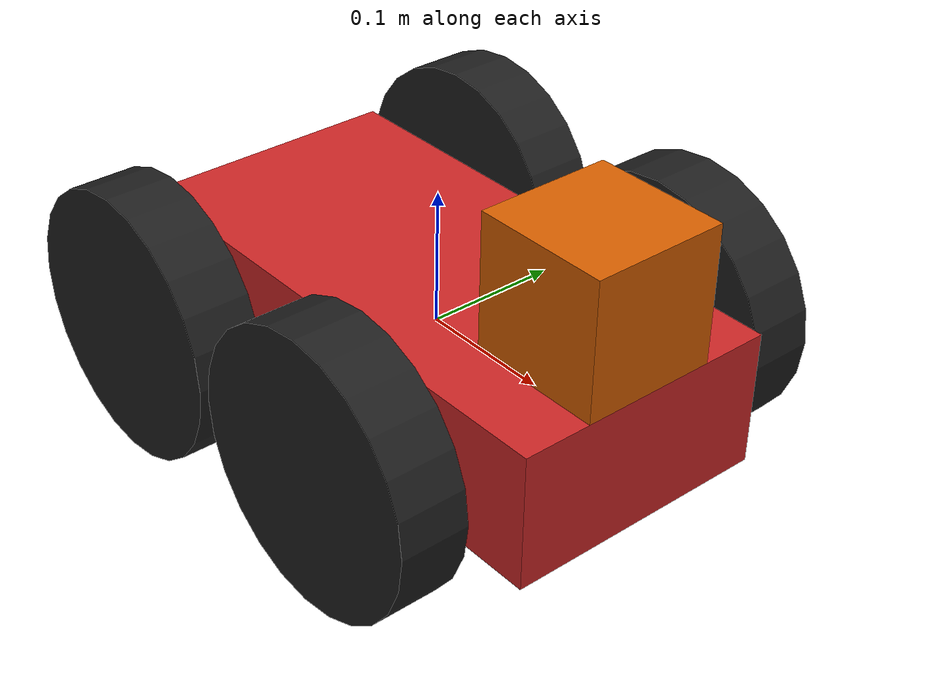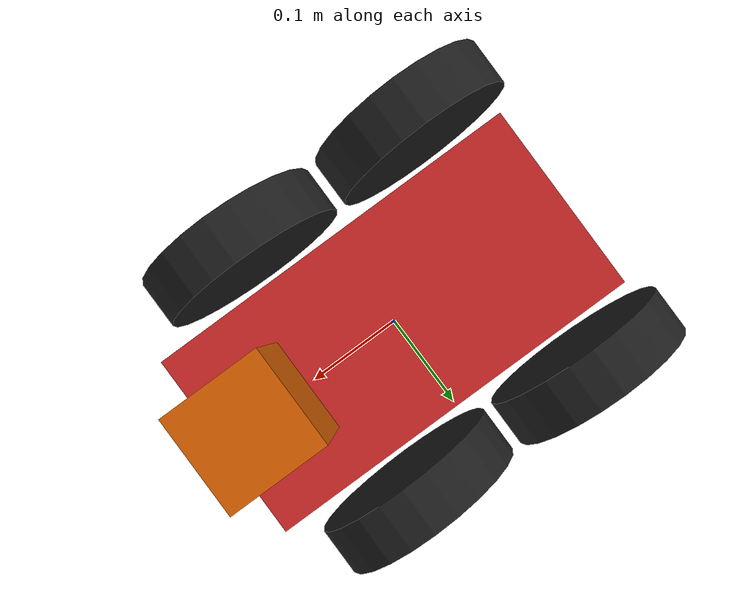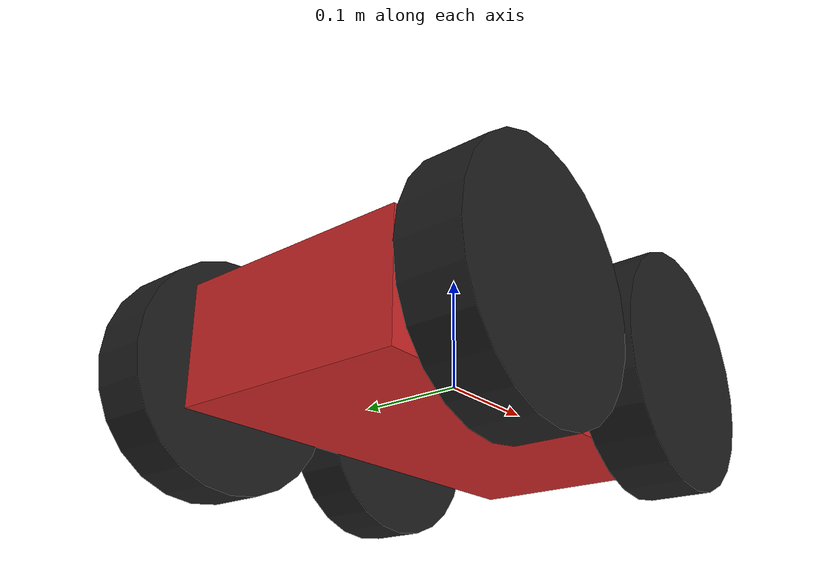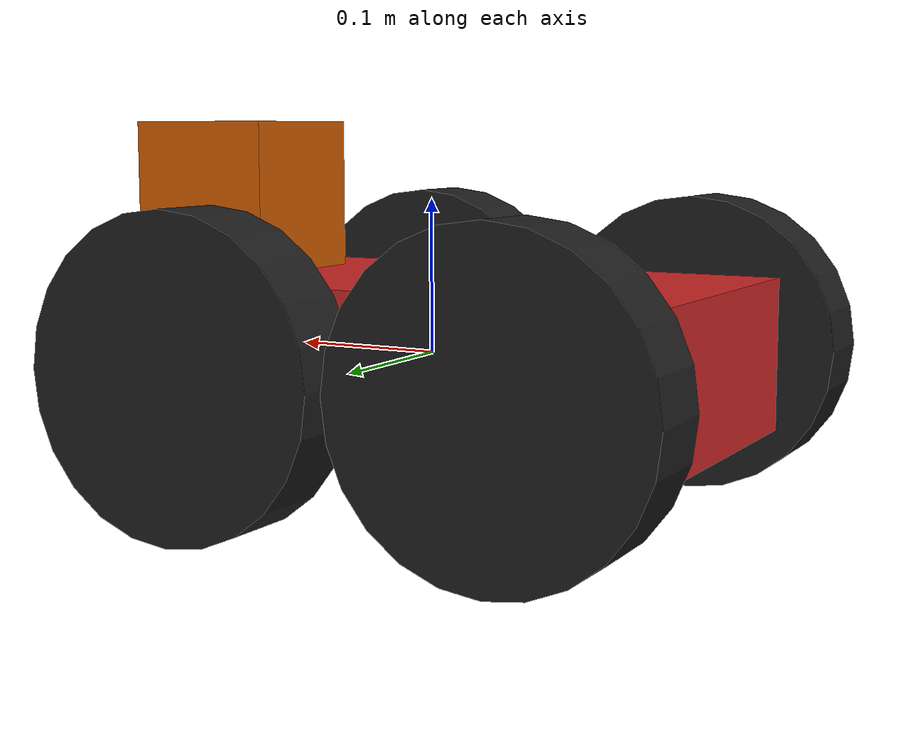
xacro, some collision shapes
<?xml version='1.0'?>

<robot name="myrobot" xmlns:xacro="http://www.ros.org/wiki/xacro">

  <xacro:property name="cameraSize" value="0.05"/>
  <xacro:property name="cameraMass" value="0.1"/>

  <xacro:include filename="$(find mybot_description)/urdf/mybot.gazebo" />
  <xacro:include filename="$(find mybot_description)/urdf/materials.xacro" />
  <xacro:include filename="$(find mybot_description)/urdf/macros.xacro" />

  <link name='chassis'>
    <pose>0 0 0.1 0 0 0</pose>

    <inertial>
      <mass value="15.0"/>
      <origin xyz="0.0 0 0.1" rpy=" 0 0 0"/>
      <inertia
          ixx="0.1" ixy="0" ixz="0"
          iyy="0.1" iyz="0"
          izz="0.1"
      />
    </inertial>

    <collision name='collision'>
      <geometry>
        <box size=".4 .2 .1"/>
      </geometry>
    </collision>

    <visual name='chassis_visual'>
      <origin xyz="0 0 0" rpy=" 0 0 0"/>
      <geometry>
        <box size=".4 .2 .1"/>
      </geometry>
      <material name="red"/>
    </visual>

  </link>

<link name="bleft_wheel">
    <!--origin xyz="0.1 0.13 0.1" rpy="0 1.5707 1.5707"/-->
    <collision name="collision">
      <origin xyz="0 0 0" rpy="0 1.5707 1.5707"/>
      <geometry>
        <cylinder radius="0.1" length="0.05"/>
      </geometry>
    </collision>
    <visual name="bleft_wheel_visual">
      <origin xyz="0 0 0" rpy="0 1.5707 1.5707"/>
      <geometry>
        <cylinder radius="0.1" length="0.05"/>
      </geometry>
      <material name="black"/>
    </visual>
    <inertial>
      <origin xyz="0 0 0" rpy="0 1.5707 1.5707"/>
      <mass value="5"/>
      <inertia
        ixx=".1" ixy="0.0" ixz="0.0"
        iyy=".1" iyz="0.0"
        izz=".1"/>
    </inertial>
  </link>

 <joint type="continuous" name="back_left_wheel_joint">
    <origin xyz="-0.13 0.15 0" rpy="0 0 0"/>
    <!--origin xyz="0.1 0.13 0" rpy="0 1.5707 1.5707"/-->
    <child link="bleft_wheel"/>
    <parent link="chassis"/>
    <axis xyz="0 1 0" rpy="0 0 0"/>
    <limit effort="10000" velocity="1000"/>
    <joint_properties damping="1.0" friction="1.0"/>
  </joint>

<link name="bright_wheel">
    <!--origin xyz="0.1 -0.13 0.1" rpy="0 1.5707 1.5707"/-->
    <collision name="collision">
      <origin xyz="0 0 0" rpy="0 1.5707 1.5707"/>
      <geometry>
        <cylinder radius="0.1" length="0.05"/>
      </geometry>
    </collision>
    <visual name="bright_wheel_visual">
      <origin xyz="0 0 0" rpy="0 1.5707 1.5707"/>
      <geometry>
        <cylinder radius="0.1" length="0.05"/>
      </geometry>
      <material name="black"/>
    </visual>
    <inertial>
      <origin xyz="0 0 0" rpy="0 1.5707 1.5707"/>
      <mass value="5"/>
      <inertia
        ixx=".1" ixy="0.0" ixz="0.0"
        iyy=".1" iyz="0.0"
        izz=".1"/>
    </inertial>
  </link>

   <joint type="continuous" name="back_right_wheel_joint">
    <origin xyz="-0.13 -0.15 0" rpy="0 0 0"/>
    <!--origin xyz="0.1 -0.13 0" rpy="0 1.5707 1.5707"/-->
    <child link="bright_wheel"/>
    <parent link="chassis"/>
    <axis xyz="0 1 0" rpy="0 0 0"/>
    <limit effort="10000" velocity="1000"/>
    <joint_properties damping="1.0" friction="1.0"/>
  </joint>

  <link name="left_wheel">
    <!--origin xyz="0.1 0.13 0.1" rpy="0 1.5707 1.5707"/-->
    <collision name="collision">
      <origin xyz="0 0 0" rpy="0 1.5707 1.5707"/>
      <geometry>
        <cylinder radius="0.1" length="0.05"/>
      </geometry>
    </collision>
    <visual name="left_wheel_visual">
      <origin xyz="0 0 0" rpy="0 1.5707 1.5707"/>
      <geometry>
        <cylinder radius="0.1" length="0.05"/>
      </geometry>
      <material name="black"/>
    </visual>
    <inertial>
      <origin xyz="0 0 0" rpy="0 1.5707 1.5707"/>
      <mass value="5"/>
      <inertia
        ixx=".1" ixy="0.0" ixz="0.0"
        iyy=".1" iyz="0.0"
        izz=".1"/>
    </inertial>
  </link>

  <link name="right_wheel">
    <!--origin xyz="0.1 -0.13 0.1" rpy="0 1.5707 1.5707"/-->
    <collision name="collision">
      <origin xyz="0 0 0" rpy="0 1.5707 1.5707"/>
      <geometry>
        <cylinder radius="0.1" length="0.05"/>
      </geometry>
    </collision>
    <visual name="right_wheel_visual">
      <origin xyz="0 0 0" rpy="0 1.5707 1.5707"/>
      <geometry>
        <cylinder radius="0.1" length="0.05"/>
      </geometry>
      <material name="black"/>
    </visual>
    <inertial>
      <origin xyz="0 0 0" rpy="0 1.5707 1.5707"/>
      <mass value="5"/>
      <inertia
        ixx=".1" ixy="0.0" ixz="0.0"
        iyy=".1" iyz="0.0"
        izz=".1"/>
    </inertial>
  </link>

  <joint type="continuous" name="front_left_wheel_joint">
    <origin xyz="0.08 0.15 0" rpy="0 0 0"/>
    <!--origin xyz="0.1 0.13 0" rpy="0 1.5707 1.5707"/-->
    <child link="left_wheel"/>
    <parent link="chassis"/>
    <axis xyz="0 1 0" rpy="0 0 0"/>
    <limit effort="10000" velocity="1000"/>
    <joint_properties damping="1.0" friction="1.0"/>
  </joint>

  <joint type="continuous" name="front_right_wheel_joint">
    <origin xyz="0.08 -0.15 0" rpy="0 0 0"/>
    <!--origin xyz="0.1 -0.13 0" rpy="0 1.5707 1.5707"/-->
    <child link="right_wheel"/>
    <parent link="chassis"/>
    <axis xyz="0 1 0" rpy="0 0 0"/>
    <limit effort="10000" velocity="1000"/>
    <joint_properties damping="1.0" friction="1.0"/>
  </joint>

  <joint name="hokuyo_joint" type="fixed">
    <axis xyz="0 1 0" />
    <origin xyz=".15 0 .1" rpy="0 0 0"/>
    <parent link="chassis"/>
    <child link="hokuyo"/>
  </joint>

  <!-- Hokuyo Laser -->
  <link name="hokuyo">
    <collision>
      <origin xyz="0 0 0" rpy="0 0 0"/>
      <geometry>
    <box size="0.1 0.1 0.1"/>
      </geometry>
    </collision>

    <visual>
      <origin xyz="0 0 0" rpy="0 0 0"/>
      <geometry>
        <mesh filename="package://mybot_description/meshes/hokuyo.dae"/>
      </geometry>
    </visual>

    <inertial>
      <mass value="1e-5" />
      <origin xyz="0 0 0" rpy="0 0 0"/>
      <inertia ixx="1e-6" ixy="0" ixz="0" iyy="1e-6" iyz="0" izz="1e-6" />
    </inertial>
  </link>

</robot>
